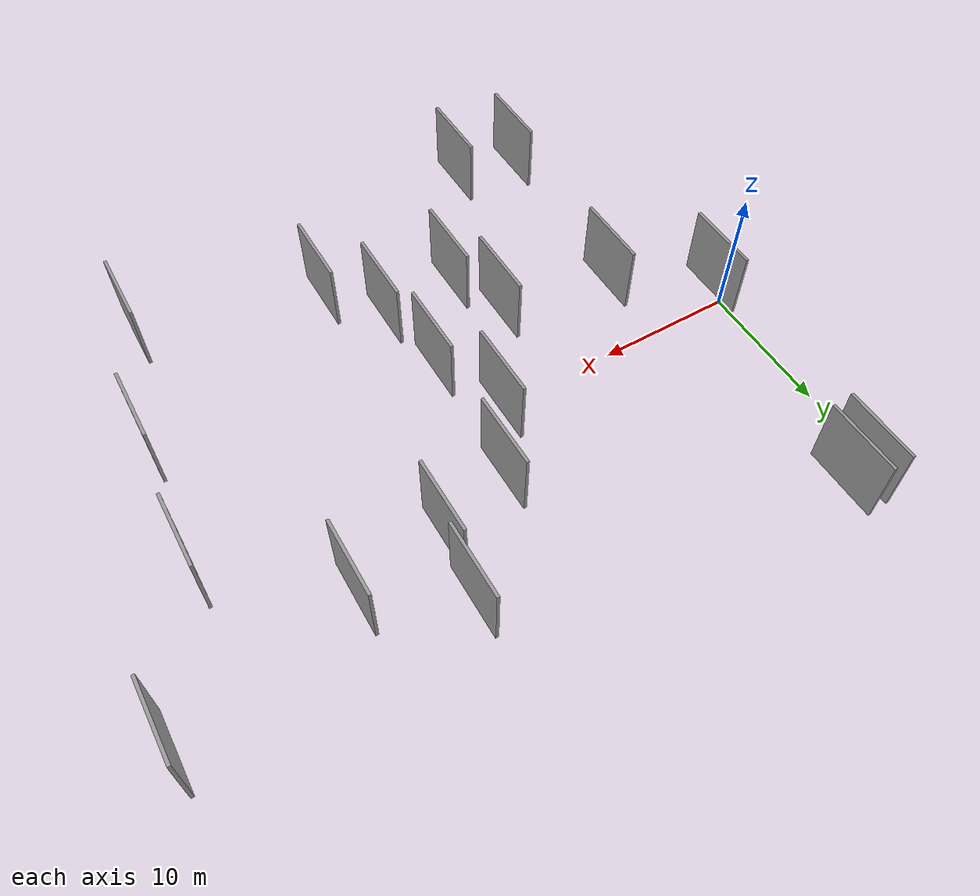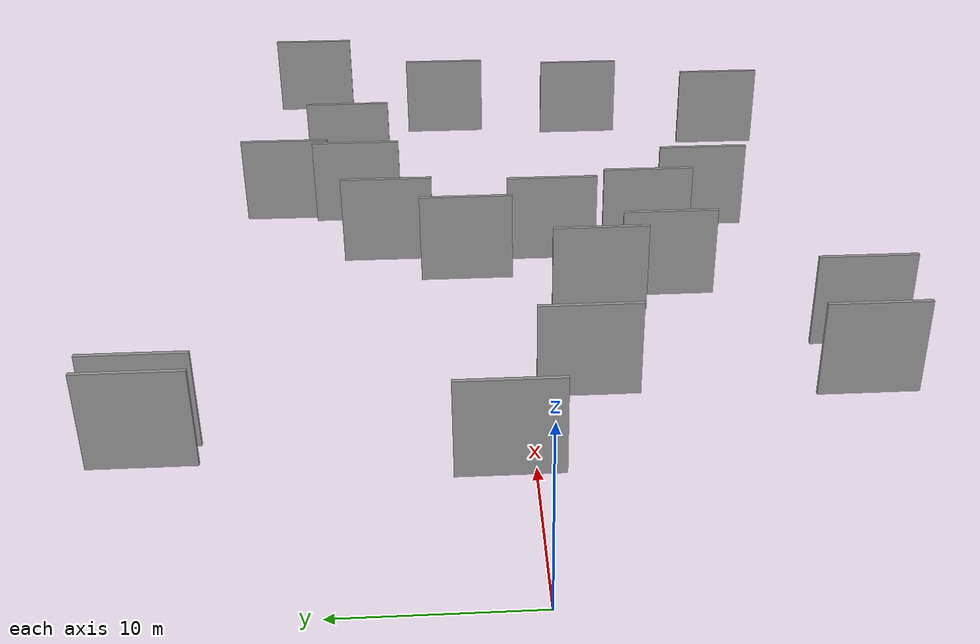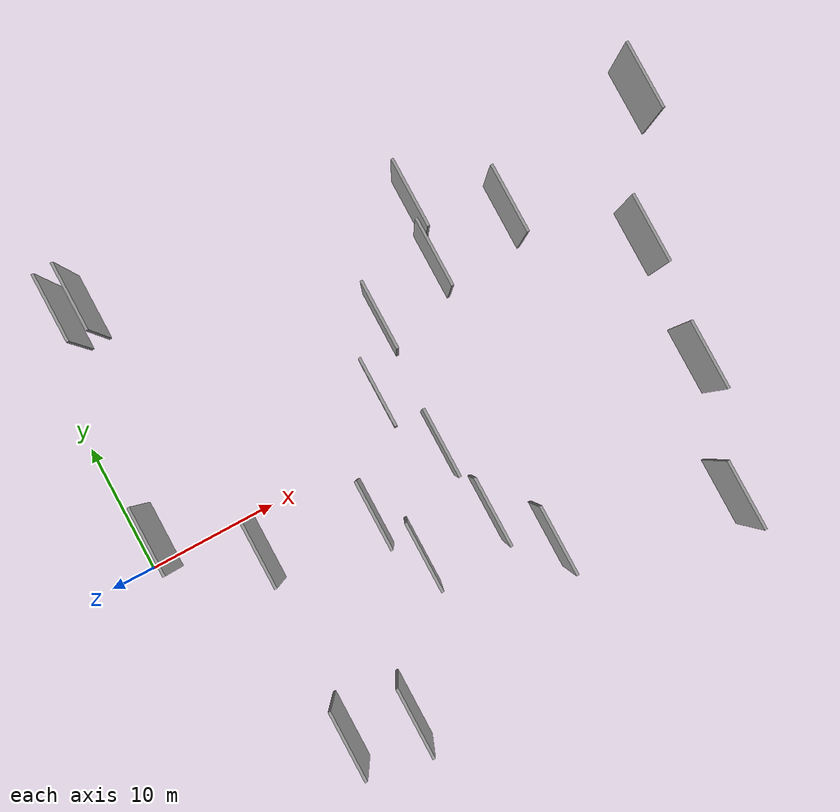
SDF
<sdf version="1.6">
 <world name="default">
  <scene>
   <sky><clouds><speed>12</speed></clouds></sky>
   <ambient>0.4 0.4 0.4 1</ambient>
   <background>0.7 0.7 0.7 1</background>
   <shadows>1</shadows>
  </scene>
  <gravity>0 0 -9.8066</gravity>
  <magnetic_field>6e-06 2.3e-05 -4.2e-05</magnetic_field>
  <physics default="0" name="default_physics" type="ode">
   <ode>
    <solver>
     <type>quick</type>
     <iters>10</iters>
     <sor>1.0</sor>
     <use_dynamic_moi_rescaling>0</use_dynamic_moi_rescaling>
    </solver>
    <constraints>
     <cfm>0</cfm>
     <erp>0.2</erp>
     <contact_max_correcting_vel>100</contact_max_correcting_vel>
     <contact_surface_layer>0.001</contact_surface_layer>
    </constraints>
   </ode>
   <max_step_size>0.004</max_step_size>
   <real_time_factor>1</real_time_factor>
   <real_time_update_rate>250</real_time_update_rate>
  </physics>
  <light name="sun" type="directional">
   <pose>0 0 10 0 0 0</pose>
   <diffuse>0.8 0.8 0.8 1</diffuse>
   <specular>0.2 0.2 0.2 1</specular>
   <attenuation>
    <range>1000</range>
    <constant>0.9</constant>
    <linear>0.01</linear>
    <quadratic>0.001</quadratic>
   </attenuation>
   <direction>-0.5 0.1 -0.9</direction>
  </light>
  <model name="grey_wall_1">
   <static>1</static>
   <pose>26.5511 -10.7460 5.0 0.000000 0.000000 1.570796</pose>
   <link name="link">
    <pose>0 0 2.50 0 0 0</pose>
    <collision name="collision"><geometry><box><size>5.00 0.2 5.00</size></box></geometry></collision>
    <visual name="visual">
     <cast_shadows>0</cast_shadows>
     <geometry><box><size>5.00 0.2 5.00</size></box></geometry>
     <material>
      <script>
       <uri>model://grey_wall/materials/scripts</uri>
       <uri>model://grey_wall/materials/textures</uri>
       <name>vrc/grey_wall</name>
      </script>
     </material>
    </visual>
   </link>
  </model>
  <model name="grey_wall_2">
   <static>1</static>
   <pose>3.2593 1.6454 5.0 0.000000 0.000000 1.570796</pose>
   <link name="link">
    <pose>0 0 2.50 0 0 0</pose>
    <collision name="collision"><geometry><box><size>5.00 0.2 5.00</size></box></geometry></collision>
    <visual name="visual">
     <cast_shadows>0</cast_shadows>
     <geometry><box><size>5.00 0.2 5.00</size></box></geometry>
     <material>
      <script>
       <uri>model://grey_wall/materials/scripts</uri>
       <uri>model://grey_wall/materials/textures</uri>
       <name>vrc/grey_wall</name>
      </script>
     </material>
    </visual>
   </link>
  </model>
  <model name="grey_wall_3">
   <static>1</static>
   <pose>40.8356 -4.8632 5.0 0.000000 0.000000 1.570796</pose>
   <link name="link">
    <pose>0 0 2.50 0 0 0</pose>
    <collision name="collision"><geometry><box><size>5.00 0.2 5.00</size></box></geometry></collision>
    <visual name="visual">
     <cast_shadows>0</cast_shadows>
     <geometry><box><size>5.00 0.2 5.00</size></box></geometry>
     <material>
      <script>
       <uri>model://grey_wall/materials/scripts</uri>
       <uri>model://grey_wall/materials/textures</uri>
       <name>vrc/grey_wall</name>
      </script>
     </material>
    </visual>
   </link>
  </model>
  <model name="grey_wall_4">
   <static>1</static>
   <pose>38.5393 -13.8906 5.0 0.000000 0.000000 1.570796</pose>
   <link name="link">
    <pose>0 0 2.50 0 0 0</pose>
    <collision name="collision"><geometry><box><size>5.00 0.2 5.00</size></box></geometry></collision>
    <visual name="visual">
     <cast_shadows>0</cast_shadows>
     <geometry><box><size>5.00 0.2 5.00</size></box></geometry>
     <material>
      <script>
       <uri>model://grey_wall/materials/scripts</uri>
       <uri>model://grey_wall/materials/textures</uri>
       <name>vrc/grey_wall</name>
      </script>
     </material>
    </visual>
   </link>
  </model>
  <model name="grey_wall_5">
   <static>1</static>
   <pose>28.8122 13.5344 5.0 0.000000 0.000000 1.570796</pose>
   <link name="link">
    <pose>0 0 2.50 0 0 0</pose>
    <collision name="collision"><geometry><box><size>5.00 0.2 5.00</size></box></geometry></collision>
    <visual name="visual">
     <cast_shadows>0</cast_shadows>
     <geometry><box><size>5.00 0.2 5.00</size></box></geometry>
     <material>
      <script>
       <uri>model://grey_wall/materials/scripts</uri>
       <uri>model://grey_wall/materials/textures</uri>
       <name>vrc/grey_wall</name>
      </script>
     </material>
    </visual>
   </link>
  </model>
  <model name="grey_wall_6">
   <static>1</static>
   <pose>16.8588 -3.7617 5.0 0.000000 0.000000 1.570796</pose>
   <link name="link">
    <pose>0 0 2.50 0 0 0</pose>
    <collision name="collision"><geometry><box><size>5.00 0.2 5.00</size></box></geometry></collision>
    <visual name="visual">
     <cast_shadows>0</cast_shadows>
     <geometry><box><size>5.00 0.2 5.00</size></box></geometry>
     <material>
      <script>
       <uri>model://grey_wall/materials/scripts</uri>
       <uri>model://grey_wall/materials/textures</uri>
       <name>vrc/grey_wall</name>
      </script>
     </material>
    </visual>
   </link>
  </model>
  <model name="grey_wall_7">
   <static>1</static>
   <pose>20.8254 3.1237 5.0 0.000000 0.000000 1.570796</pose>
   <link name="link">
    <pose>0 0 2.50 0 0 0</pose>
    <collision name="collision"><geometry><box><size>5.00 0.2 5.00</size></box></geometry></collision>
    <visual name="visual">
     <cast_shadows>0</cast_shadows>
     <geometry><box><size>5.00 0.2 5.00</size></box></geometry>
     <material>
      <script>
       <uri>model://grey_wall/materials/scripts</uri>
       <uri>model://grey_wall/materials/textures</uri>
       <name>vrc/grey_wall</name>
      </script>
     </material>
    </visual>
   </link>
  </model>
  <model name="grey_wall_8">
   <static>1</static>
   <pose>8.5311 -15.8332 5.0 0.000000 0.000000 1.570796</pose>
   <link name="link">
    <pose>0 0 2.50 0 0 0</pose>
    <collision name="collision"><geometry><box><size>5.00 0.2 5.00</size></box></geometry></collision>
    <visual name="visual">
     <cast_shadows>0</cast_shadows>
     <geometry><box><size>5.00 0.2 5.00</size></box></geometry>
     <material>
      <script>
       <uri>model://grey_wall/materials/scripts</uri>
       <uri>model://grey_wall/materials/textures</uri>
       <name>vrc/grey_wall</name>
      </script>
     </material>
    </visual>
   </link>
  </model>
  <model name="grey_wall_9">
   <static>1</static>
   <pose>9.1746 -2.4098 5.0 0.000000 0.000000 1.570796</pose>
   <link name="link">
    <pose>0 0 2.50 0 0 0</pose>
    <collision name="collision"><geometry><box><size>5.00 0.2 5.00</size></box></geometry></collision>
    <visual name="visual">
     <cast_shadows>0</cast_shadows>
     <geometry><box><size>5.00 0.2 5.00</size></box></geometry>
     <material>
      <script>
       <uri>model://grey_wall/materials/scripts</uri>
       <uri>model://grey_wall/materials/textures</uri>
       <name>vrc/grey_wall</name>
      </script>
     </material>
    </visual>
   </link>
  </model>
  <model name="grey_wall_10">
   <static>1</static>
   <pose>23.2894 7.4678 5.0 0.000000 0.000000 1.570796</pose>
   <link name="link">
    <pose>0 0 2.50 0 0 0</pose>
    <collision name="collision"><geometry><box><size>5.00 0.2 5.00</size></box></geometry></collision>
    <visual name="visual">
     <cast_shadows>0</cast_shadows>
     <geometry><box><size>5.00 0.2 5.00</size></box></geometry>
     <material>
      <script>
       <uri>model://grey_wall/materials/scripts</uri>
       <uri>model://grey_wall/materials/textures</uri>
       <name>vrc/grey_wall</name>
      </script>
     </material>
    </visual>
   </link>
  </model>
  <model name="grey_wall_11">
   <static>1</static>
   <pose>18.4514 -7.6210 5.0 0.000000 0.000000 1.570796</pose>
   <link name="link">
    <pose>0 0 2.50 0 0 0</pose>
    <collision name="collision"><geometry><box><size>5.00 0.2 5.00</size></box></geometry></collision>
    <visual name="visual">
     <cast_shadows>0</cast_shadows>
     <geometry><box><size>5.00 0.2 5.00</size></box></geometry>
     <material>
      <script>
       <uri>model://grey_wall/materials/scripts</uri>
       <uri>model://grey_wall/materials/textures</uri>
       <name>vrc/grey_wall</name>
      </script>
     </material>
    </visual>
   </link>
  </model>
  <model name="grey_wall_12">
   <static>1</static>
   <pose>4.7697 17.9008 5.0 0.000000 0.000000 1.570796</pose>
   <link name="link">
    <pose>0 0 2.50 0 0 0</pose>
    <collision name="collision"><geometry><box><size>5.00 0.2 5.00</size></box></geometry></collision>
    <visual name="visual">
     <cast_shadows>0</cast_shadows>
     <geometry><box><size>5.00 0.2 5.00</size></box></geometry>
     <material>
      <script>
       <uri>model://grey_wall/materials/scripts</uri>
       <uri>model://grey_wall/materials/textures</uri>
       <name>vrc/grey_wall</name>
      </script>
     </material>
    </visual>
   </link>
  </model>
  <model name="grey_wall_13">
   <static>1</static>
   <pose>6.2085 17.9881 5.0 0.000000 0.000000 1.570796</pose>
   <link name="link">
    <pose>0 0 2.50 0 0 0</pose>
    <collision name="collision"><geometry><box><size>5.00 0.2 5.00</size></box></geometry></collision>
    <visual name="visual">
     <cast_shadows>0</cast_shadows>
     <geometry><box><size>5.00 0.2 5.00</size></box></geometry>
     <material>
      <script>
       <uri>model://grey_wall/materials/scripts</uri>
       <uri>model://grey_wall/materials/textures</uri>
       <name>vrc/grey_wall</name>
      </script>
     </material>
    </visual>
   </link>
  </model>
  <model name="grey_wall_14">
   <static>1</static>
   <pose>12.9958 -16.5812 5.0 0.000000 0.000000 1.570796</pose>
   <link name="link">
    <pose>0 0 2.50 0 0 0</pose>
    <collision name="collision"><geometry><box><size>5.00 0.2 5.00</size></box></geometry></collision>
    <visual name="visual">
     <cast_shadows>0</cast_shadows>
     <geometry><box><size>5.00 0.2 5.00</size></box></geometry>
     <material>
      <script>
       <uri>model://grey_wall/materials/scripts</uri>
       <uri>model://grey_wall/materials/textures</uri>
       <name>vrc/grey_wall</name>
      </script>
     </material>
    </visual>
   </link>
  </model>
  <model name="grey_wall_15">
   <static>1</static>
   <pose>34.3257 10.1600 5.0 0.000000 0.000000 1.570796</pose>
   <link name="link">
    <pose>0 0 2.50 0 0 0</pose>
    <collision name="collision"><geometry><box><size>5.00 0.2 5.00</size></box></geometry></collision>
    <visual name="visual">
     <cast_shadows>0</cast_shadows>
     <geometry><box><size>5.00 0.2 5.00</size></box></geometry>
     <material>
      <script>
       <uri>model://grey_wall/materials/scripts</uri>
       <uri>model://grey_wall/materials/textures</uri>
       <name>vrc/grey_wall</name>
      </script>
     </material>
    </visual>
   </link>
  </model>
  <model name="grey_wall_16">
   <static>1</static>
   <pose>41.4924 4.1172 5.0 0.000000 0.000000 1.570796</pose>
   <link name="link">
    <pose>0 0 2.50 0 0 0</pose>
    <collision name="collision"><geometry><box><size>5.00 0.2 5.00</size></box></geometry></collision>
    <visual name="visual">
     <cast_shadows>0</cast_shadows>
     <geometry><box><size>5.00 0.2 5.00</size></box></geometry>
     <material>
      <script>
       <uri>model://grey_wall/materials/scripts</uri>
       <uri>model://grey_wall/materials/textures</uri>
       <name>vrc/grey_wall</name>
      </script>
     </material>
    </visual>
   </link>
  </model>
  <model name="grey_wall_17">
   <static>1</static>
   <pose>23.7131 -7.1701 5.0 0.000000 0.000000 1.570796</pose>
   <link name="link">
    <pose>0 0 2.50 0 0 0</pose>
    <collision name="collision"><geometry><box><size>5.00 0.2 5.00</size></box></geometry></collision>
    <visual name="visual">
     <cast_shadows>0</cast_shadows>
     <geometry><box><size>5.00 0.2 5.00</size></box></geometry>
     <material>
      <script>
       <uri>model://grey_wall/materials/scripts</uri>
       <uri>model://grey_wall/materials/textures</uri>
       <name>vrc/grey_wall</name>
      </script>
     </material>
    </visual>
   </link>
  </model>
  <model name="grey_wall_18">
   <static>1</static>
   <pose>22.9192 -1.7013 5.0 0.000000 0.000000 1.570796</pose>
   <link name="link">
    <pose>0 0 2.50 0 0 0</pose>
    <collision name="collision"><geometry><box><size>5.00 0.2 5.00</size></box></geometry></collision>
    <visual name="visual">
     <cast_shadows>0</cast_shadows>
     <geometry><box><size>5.00 0.2 5.00</size></box></geometry>
     <material>
      <script>
       <uri>model://grey_wall/materials/scripts</uri>
       <uri>model://grey_wall/materials/textures</uri>
       <name>vrc/grey_wall</name>
      </script>
     </material>
    </visual>
   </link>
  </model>
  <model name="grey_wall_19">
   <static>1</static>
   <pose>28.3537 9.3815 5.0 0.000000 0.000000 1.570796</pose>
   <link name="link">
    <pose>0 0 2.50 0 0 0</pose>
    <collision name="collision"><geometry><box><size>5.00 0.2 5.00</size></box></geometry></collision>
    <visual name="visual">
     <cast_shadows>0</cast_shadows>
     <geometry><box><size>5.00 0.2 5.00</size></box></geometry>
     <material>
      <script>
       <uri>model://grey_wall/materials/scripts</uri>
       <uri>model://grey_wall/materials/textures</uri>
       <name>vrc/grey_wall</name>
      </script>
     </material>
    </visual>
   </link>
  </model>
  <model name="grey_wall_20">
   <static>1</static>
   <pose>45.9707 13.1160 5.0 0.000000 0.000000 1.570796</pose>
   <link name="link">
    <pose>0 0 2.50 0 0 0</pose>
    <collision name="collision"><geometry><box><size>5.00 0.2 5.00</size></box></geometry></collision>
    <visual name="visual">
     <cast_shadows>0</cast_shadows>
     <geometry><box><size>5.00 0.2 5.00</size></box></geometry>
     <material>
      <script>
       <uri>model://grey_wall/materials/scripts</uri>
       <uri>model://grey_wall/materials/textures</uri>
       <name>vrc/grey_wall</name>
      </script>
     </material>
    </visual>
   </link>
  </model>
 </world>
</sdf>
